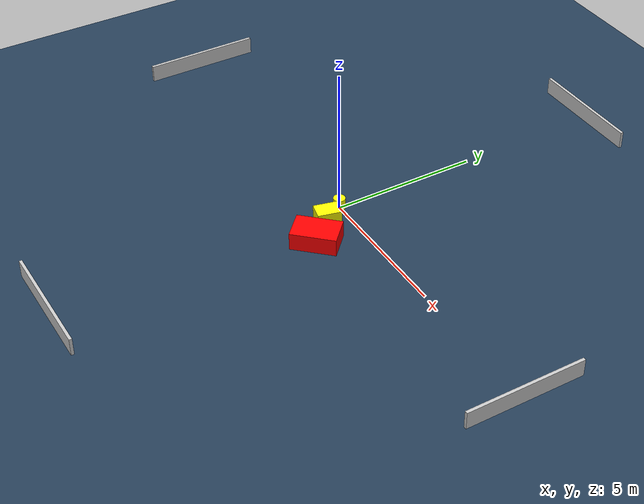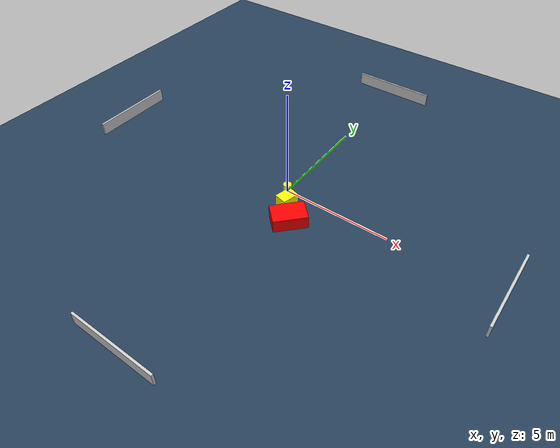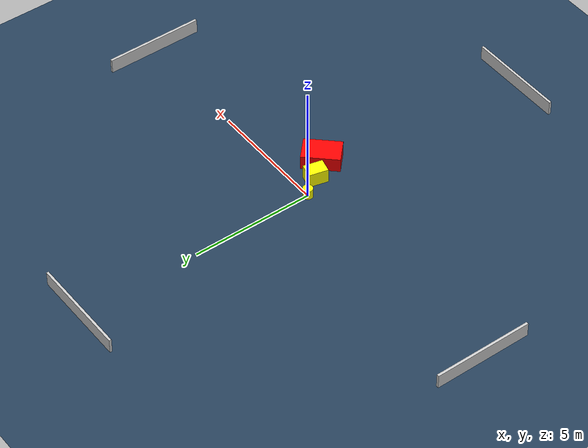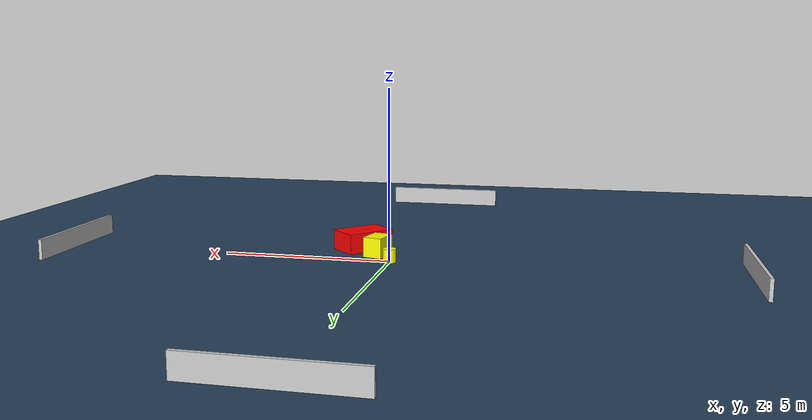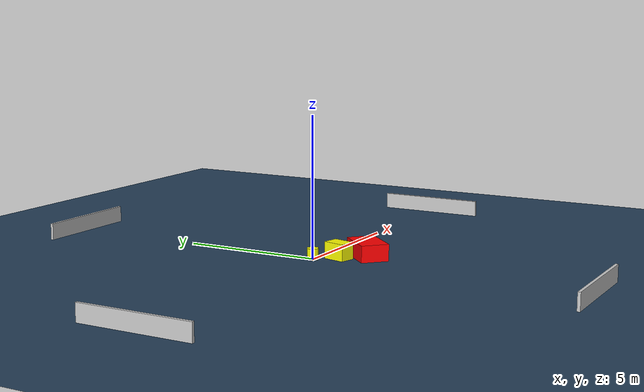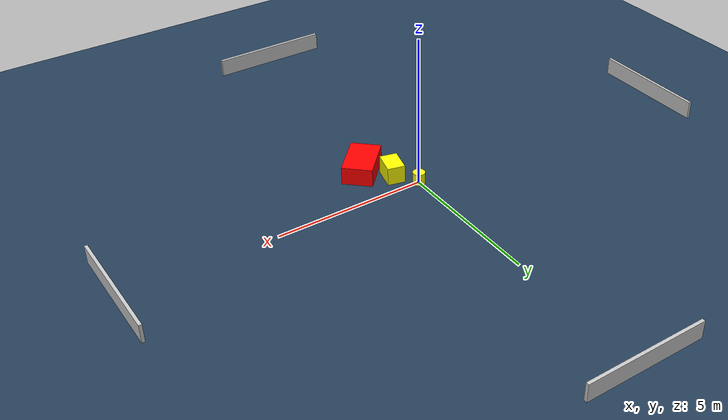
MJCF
<?xml version="1.0" ?>
<mujoco model="generated_environment">
  <option timestep="0.01" integrator="RK4" cone="elliptic"/>
  <default>
    <geom density="1"/>
  </default>
  <asset>
    <texture builtin="gradient" height="3072" name="skybox" rgb1="0.3 0.5 0.7" rgb2="0 0 0" type="skybox" width="512"/>
    <texture builtin="checker" height="300" name="groundplane" rgb1="0.2 0.3 0.4" rgb2="0.1 0.2 0.3" type="2d" width="300"/>
    <material name="groundplane" reflectance="0.2" texrepeat="5 5" texture="groundplane"/>
  </asset>
  <worldbody>
    <light dir="0 0 -1" directional="true" pos="0 0 1.5"/>
    <geom condim="3" friction="0.5 0.005 0.001" material="groundplane" name="floor" pos="0 0 0" size="0 0 0.05" type="plane"/>
    <body name="walls">
      <geom name="wall_1" condim="4" pos="-10.0 0.0 0.3" rgba="0.800000011920929 0.800000011920929 0.800000011920929 1.0" size="0.05 2.0 0.3" type="box"/>
      <geom name="wall_2" condim="4" pos="10.0 0.0 0.3" rgba="0.800000011920929 0.800000011920929 0.800000011920929 1.0" size="0.05 2.0 0.3" type="box"/>
      <geom name="wall_3" condim="4" pos="0.0 -10.0 0.3" rgba="0.800000011920929 0.800000011920929 0.800000011920929 1.0" size="2.0 0.05 0.3" type="box"/>
      <geom name="wall_4" condim="4" pos="0.0 10.0 0.3" rgba="0.800000011920929 0.800000011920929 0.800000011920929 1.0" size="2.0 0.05 0.3" type="box"/>
    </body>
    <body name="robot">
      <joint name="joint_x" type="slide" pos="0 0 0" axis="1 0 0"/>
      <joint name="joint_y" type="slide" pos="0 0 0" axis="0 1 0"/>
      <geom name="robot" type="cylinder" pos="0.0 0.0 0.2" size="0.2 0.2 0.0" mass="5.0" friction="1.0 0.005 0.0001" condim="4" rgba="1.0 1.0 0.0 1.0"/>
    </body>
    <body name="obstacle_1_movable">
      <geom name="obstacle_1_movable" condim="4" pos="0.5169805950473737 -0.7440391945813071 0.3" euler="0 0 76.43029976180948" friction="0.0 0.005 0.001" rgba="1.0 1.0 0.0 1.0" size="0.39839204634855085 0.28694331460927675 0.3" type="box" mass="0.1"/>
      <joint type="free"/>
    </body>
    <body name="obstacle_2_static">
      <geom name="obstacle_2_static" condim="4" pos="1.17118058488197 -1.5274716697162218 0.3" euler="0 0 226.60597444241523" friction="0.0 0.005 0.001" rgba="1.0 0.0 0.0 1.0" size="0.7543696315718784 0.49870698615212494 0.3" type="box"/>
    </body>
  </worldbody>
  <actuator>
    <motor name="actuator_x" joint="joint_x" gear="1" ctrlrange="-1 1"/>
    <motor name="actuator_y" joint="joint_y" gear="1" ctrlrange="-1 1"/>
  </actuator>
</mujoco>
